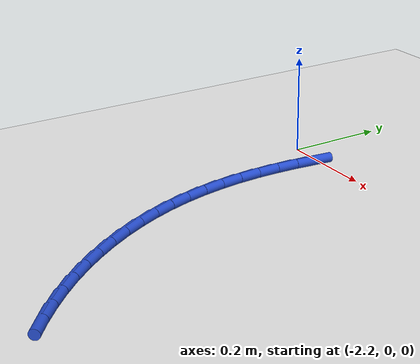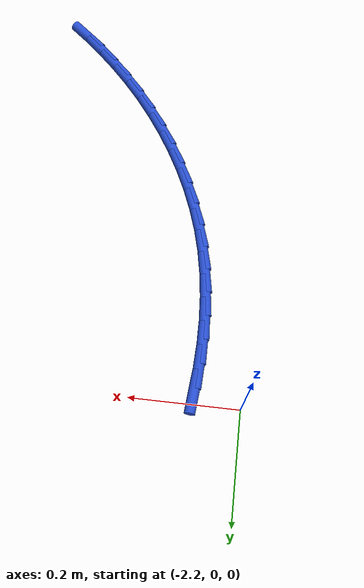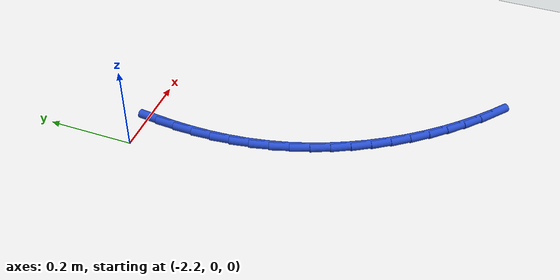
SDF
<sdf version="1.6">
 <world name="default">
  <model name="ground_plane">
   <static>1</static>
   <link name="link">
    <collision name="collision">
     <geometry><plane><normal>0 0 1</normal><size>100 100</size></plane></geometry>
     <surface><friction><ode><mu>100</mu><mu2>50</mu2></ode></friction></surface>
    </collision>
    <visual name="visual">
     <cast_shadows>0</cast_shadows>
     <geometry><plane><normal>0 0 1</normal><size>100 100</size></plane></geometry>
     <material>
      <script><uri>file://media/materials/scripts/gazebo.material</uri><name>Gazebo/WhiteGlow</name></script>
     </material>
    </visual>
   </link>
  </model>
  <model name="line">
   <link name="link_76">
    <pose>-2.1150318288298293 -0.020950475889708386 0.01 0 1.57 1.4736135003460378</pose>
    <collision name="collision">
     <geometry><cylinder><radius>0.01</radius><length>0.08</length></cylinder></geometry>
    </collision>
    <visual name="visual">
     <material>
      <script><name>Gazebo/Blue</name><uri>file://media/materials/scripts/gazebo.material</uri></script>
     </material>
     <geometry><cylinder><radius>0.01</radius><length>0.08</length></cylinder></geometry>
    </visual>
   </link>
   <link name="link_77">
    <pose>-2.119439766853229 -0.06616476438680052 0.01 0 1.57 1.5218176122886777</pose>
    <collision name="collision">
     <geometry><cylinder><radius>0.01</radius><length>0.08</length></cylinder></geometry>
    </collision>
    <visual name="visual">
     <material>
      <script><name>Gazebo/Blue</name><uri>file://media/materials/scripts/gazebo.material</uri></script>
     </material>
     <geometry><cylinder><radius>0.01</radius><length>0.08</length></cylinder></geometry>
    </visual>
   </link>
   <link name="link_78">
    <pose>-2.121657538865375 -0.1114088737040072 0.01 0 1.57 -1.5685187345004907</pose>
    <collision name="collision">
     <geometry><cylinder><radius>0.01</radius><length>0.08</length></cylinder></geometry>
    </collision>
    <visual name="visual">
     <material>
      <script><name>Gazebo/Blue</name><uri>file://media/materials/scripts/gazebo.material</uri></script>
     </material>
     <geometry><cylinder><radius>0.01</radius><length>0.08</length></cylinder></geometry>
    </visual>
   </link>
   <link name="link_79">
    <pose>-2.1215547289914136 -0.1565485136829578 0.01 0 1.57 -1.513980978570573</pose>
    <collision name="collision">
     <geometry><cylinder><radius>0.01</radius><length>0.08</length></cylinder></geometry>
    </collision>
    <visual name="visual">
     <material>
      <script><name>Gazebo/Blue</name><uri>file://media/materials/scripts/gazebo.material</uri></script>
     </material>
     <geometry><cylinder><radius>0.01</radius><length>0.08</length></cylinder></geometry>
    </visual>
   </link>
   <link name="link_80">
    <pose>-2.119000921356489 -0.20144939416527835 0.01 0 1.57 -1.4559774639001841</pose>
    <collision name="collision">
     <geometry><cylinder><radius>0.01</radius><length>0.08</length></cylinder></geometry>
    </collision>
    <visual name="visual">
     <material>
      <script><name>Gazebo/Blue</name><uri>file://media/materials/scripts/gazebo.material</uri></script>
     </material>
     <geometry><cylinder><radius>0.01</radius><length>0.08</length></cylinder></geometry>
    </visual>
   </link>
   <link name="link_81">
    <pose>-2.1138657000857486 -0.24597722499259808 0.01 0 1.57 -1.394390215223277</pose>
    <collision name="collision">
     <geometry><cylinder><radius>0.01</radius><length>0.08</length></cylinder></geometry>
    </collision>
    <visual name="visual">
     <material>
      <script><name>Gazebo/Blue</name><uri>file://media/materials/scripts/gazebo.material</uri></script>
     </material>
     <geometry><cylinder><radius>0.01</radius><length>0.08</length></cylinder></geometry>
    </visual>
   </link>
   <link name="link_82">
    <pose>-2.1060186493043385 -0.289997716006544 0.01 0 1.57 -1.3294736668492024</pose>
    <collision name="collision">
     <geometry><cylinder><radius>0.01</radius><length>0.08</length></cylinder></geometry>
    </collision>
    <visual name="visual">
     <material>
      <script><name>Gazebo/Blue</name><uri>file://media/materials/scripts/gazebo.material</uri></script>
     </material>
     <geometry><cylinder><radius>0.01</radius><length>0.08</length></cylinder></geometry>
    </visual>
   </link>
   <link name="link_83">
    <pose>-2.09534191876214 -0.333378070188165 0.01 0 1.57 -1.264788922982158</pose>
    <collision name="collision">
     <geometry><cylinder><radius>0.01</radius><length>0.08</length></cylinder></geometry>
    </collision>
    <visual name="visual">
     <material>
      <script><name>Gazebo/Blue</name><uri>file://media/materials/scripts/gazebo.material</uri></script>
     </material>
     <geometry><cylinder><radius>0.01</radius><length>0.08</length></cylinder></geometry>
    </visual>
   </link>
   <link name="link_84">
    <pose>-2.081875013796353 -0.3760041886601174 0.01 0 1.57 -1.202687577353545</pose>
    <collision name="collision">
     <geometry><cylinder><radius>0.01</radius><length>0.08</length></cylinder></geometry>
    </collision>
    <visual name="visual">
     <material>
      <script><name>Gazebo/Blue</name><uri>file://media/materials/scripts/gazebo.material</uri></script>
     </material>
     <geometry><cylinder><radius>0.01</radius><length>0.08</length></cylinder></geometry>
    </visual>
   </link>
   <link name="link_85">
    <pose>-2.0657645858524885 -0.41777470442918935 0.01 0 1.57 -1.1430825886279983</pose>
    <collision name="collision">
     <geometry><cylinder><radius>0.01</radius><length>0.08</length></cylinder></geometry>
    </collision>
    <visual name="visual">
     <material>
      <script><name>Gazebo/Blue</name><uri>file://media/materials/scripts/gazebo.material</uri></script>
     </material>
     <geometry><cylinder><radius>0.01</radius><length>0.08</length></cylinder></geometry>
    </visual>
   </link>
   <link name="link_86">
    <pose>-2.047159342831725 -0.45858849486527287 0.01 0 1.57 -1.0857833769517222</pose>
    <collision name="collision">
     <geometry><cylinder><radius>0.01</radius><length>0.08</length></cylinder></geometry>
    </collision>
    <visual name="visual">
     <material>
      <script><name>Gazebo/Blue</name><uri>file://media/materials/scripts/gazebo.material</uri></script>
     </material>
     <geometry><cylinder><radius>0.01</radius><length>0.08</length></cylinder></geometry>
    </visual>
   </link>
   <link name="link_87">
    <pose>-2.026207992635238 -0.49834443733825734 0.01 0 1.57 -1.030556562395042</pose>
    <collision name="collision">
     <geometry><cylinder><radius>0.01</radius><length>0.08</length></cylinder></geometry>
    </collision>
    <visual name="visual">
     <material>
      <script><name>Gazebo/Blue</name><uri>file://media/materials/scripts/gazebo.material</uri></script>
     </material>
     <geometry><cylinder><radius>0.01</radius><length>0.08</length></cylinder></geometry>
    </visual>
   </link>
   <link name="link_88">
    <pose>-2.003059243164208 -0.5369414092180331 0.01 0 1.57 -0.9771377859451416</pose>
    <collision name="collision">
     <geometry><cylinder><radius>0.01</radius><length>0.08</length></cylinder></geometry>
    </collision>
    <visual name="visual">
     <material>
      <script><name>Gazebo/Blue</name><uri>file://media/materials/scripts/gazebo.material</uri></script>
     </material>
     <geometry><cylinder><radius>0.01</radius><length>0.08</length></cylinder></geometry>
    </visual>
   </link>
   <link name="link_89">
    <pose>-1.9778618023198096 -0.5742782878744916 0.01 0 1.57 -0.925240517133797</pose>
    <collision name="collision">
     <geometry><cylinder><radius>0.01</radius><length>0.08</length></cylinder></geometry>
    </collision>
    <visual name="visual">
     <material>
      <script><name>Gazebo/Blue</name><uri>file://media/materials/scripts/gazebo.material</uri></script>
     </material>
     <geometry><cylinder><radius>0.01</radius><length>0.08</length></cylinder></geometry>
    </visual>
   </link>
   <link name="link_90">
    <pose>-1.950764378003222 -0.6102539506775226 0.01 0 1.57 -0.87456205782289</pose>
    <collision name="collision">
     <geometry><cylinder><radius>0.01</radius><length>0.08</length></cylinder></geometry>
    </collision>
    <visual name="visual">
     <material>
      <script><name>Gazebo/Blue</name><uri>file://media/materials/scripts/gazebo.material</uri></script>
     </material>
     <geometry><cylinder><radius>0.01</radius><length>0.08</length></cylinder></geometry>
    </visual>
   </link>
   <link name="link_91">
    <pose>-1.921915678115623 -0.6447672749970162 0.01 0 1.57 -0.824939911383846</pose>
    <collision name="collision">
     <geometry><cylinder><radius>0.01</radius><length>0.08</length></cylinder></geometry>
    </collision>
    <visual name="visual">
     <material>
      <script><name>Gazebo/Blue</name><uri>file://media/materials/scripts/gazebo.material</uri></script>
     </material>
     <geometry><cylinder><radius>0.01</radius><length>0.08</length></cylinder></geometry>
    </visual>
   </link>
   <link name="link_92">
    <pose>-1.8914608188342357 -0.6777311288324204 0.01 0 1.57 -0.7771718338707468</pose>
    <collision name="collision">
     <geometry><cylinder><radius>0.01</radius><length>0.08</length></cylinder></geometry>
    </collision>
    <visual name="visual">
     <material>
      <script><name>Gazebo/Blue</name><uri>file://media/materials/scripts/gazebo.material</uri></script>
     </material>
     <geometry><cylinder><radius>0.01</radius><length>0.08</length></cylinder></geometry>
    </visual>
   </link>
   <link name="link_93">
    <pose>-1.8595216221381807 -0.7091491166932058 0.01 0 1.57 -0.7316863953328954</pose>
    <collision name="collision">
     <geometry><cylinder><radius>0.01</radius><length>0.08</length></cylinder></geometry>
    </collision>
    <visual name="visual">
     <material>
      <script><name>Gazebo/Blue</name><uri>file://media/materials/scripts/gazebo.material</uri></script>
     </material>
     <geometry><cylinder><radius>0.01</radius><length>0.08</length></cylinder></geometry>
    </visual>
   </link>
   <link name="link_94">
    <pose>-1.8262106184161992 -0.7390610360704449 0.01 0 1.57 -0.688511946267499</pose>
    <collision name="collision">
     <geometry><cylinder><radius>0.01</radius><length>0.08</length></cylinder></geometry>
    </collision>
    <visual name="visual">
     <material>
      <script><name>Gazebo/Blue</name><uri>file://media/materials/scripts/gazebo.material</uri></script>
     </material>
     <geometry><cylinder><radius>0.01</radius><length>0.08</length></cylinder></geometry>
    </visual>
   </link>
  </model>
 </world>
</sdf>
